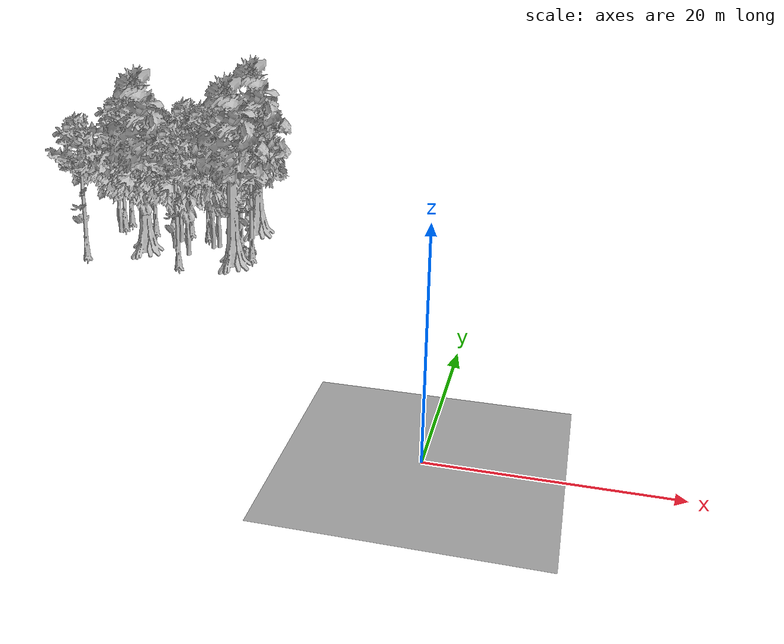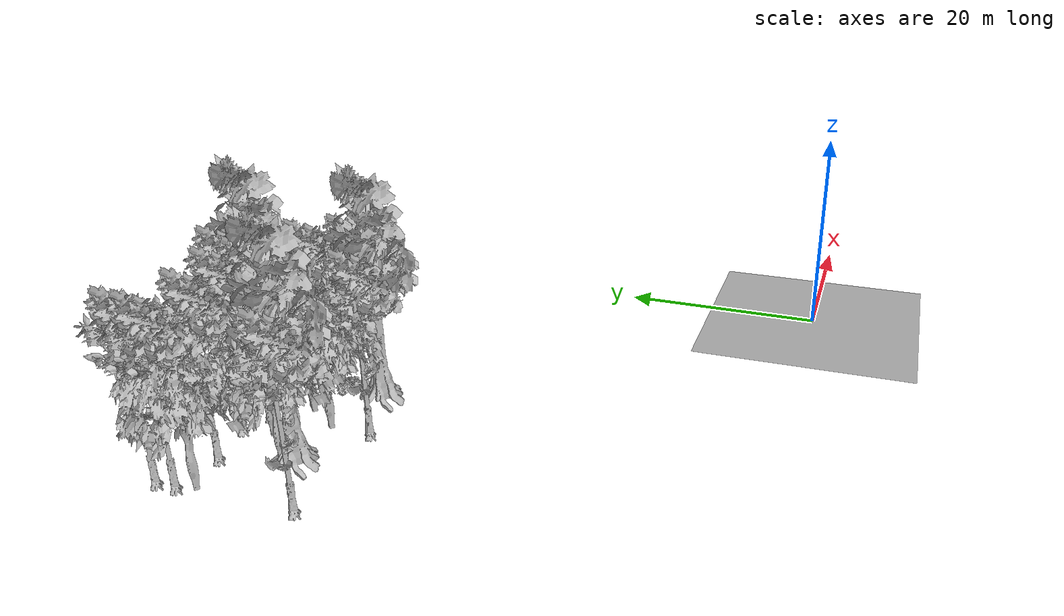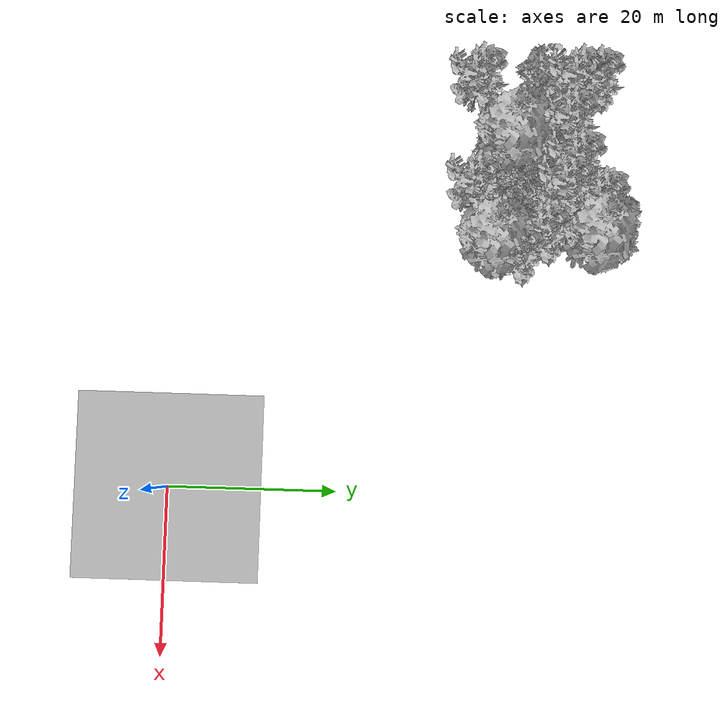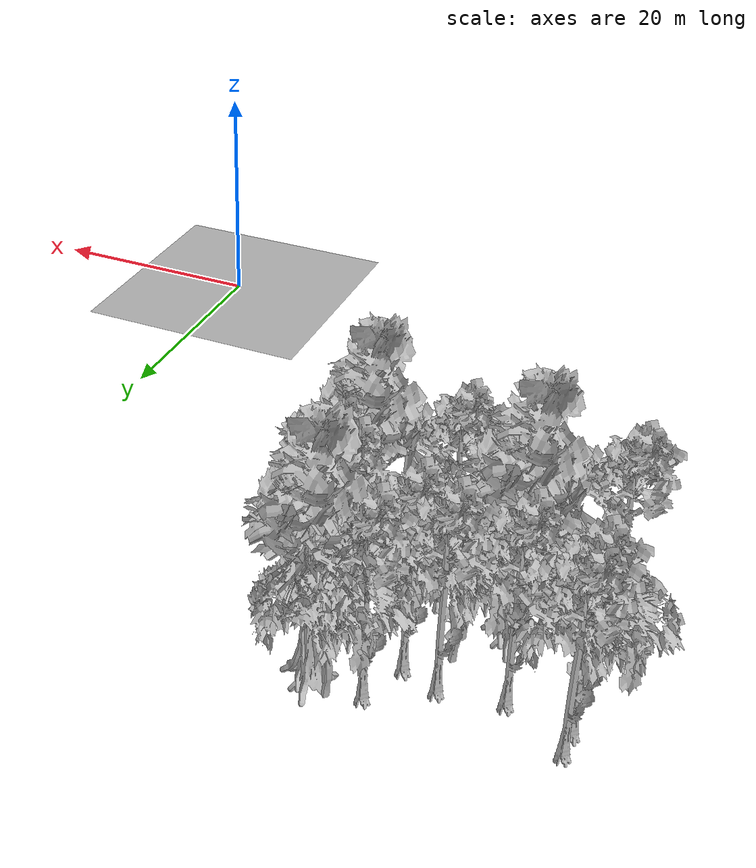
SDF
<sdf version="1.7">
 <world name="default">
  <model name="ground_plane">
   <static>1</static>
   <link name="link">
    <collision name="collision">
     <geometry><plane><normal>0 0 1</normal><size>100 100</size></plane></geometry>
     <surface><contact><ode><min_depth>0.01</min_depth><max_vel>0</max_vel></ode></contact></surface>
    </collision>
    <visual name="grass">
     <cast_shadows>0</cast_shadows>
     <geometry>
      <mesh>
       <scale>0.41000000000000003 0.41000000000000003 0.1</scale>
       <uri>file://grass_plane/meshes/grass_plane.dae</uri>
      </mesh>
     </geometry>
    </visual>
   </link>
  </model>
  <model name="Tree 3">
   <static>1</static>
   <pose>-35.04640376633964 34.69629686138252 0 1.57079 -0 0</pose>
   <link name="link">
    <collision name="collision">
     <geometry><mesh><scale>5 5 5</scale><uri>model://tree_9/meshes/tree_9.obj</uri></mesh></geometry>
    </collision>
    <visual name="visual">
     <geometry><mesh><scale>5 5 5</scale><uri>model://tree_9/meshes/tree_9.obj</uri></mesh></geometry>
    </visual>
   </link>
  </model>
  <model name="Tree 16">
   <static>1</static>
   <pose>-38.04390828666114 42.54708785325384 0 1.57079 -0 0</pose>
   <link name="link">
    <collision name="collision">
     <geometry><mesh><scale>5 5 5</scale><uri>model://tree_2/meshes/tree_2.obj</uri></mesh></geometry>
    </collision>
    <visual name="visual">
     <geometry><mesh><scale>5 5 5</scale><uri>model://tree_2/meshes/tree_2.obj</uri></mesh></geometry>
    </visual>
   </link>
  </model>
  <model name="Tree 41">
   <static>1</static>
   <pose>-32.73987073937401 41.87504957528232 0 1.57079 -0 0</pose>
   <link name="link">
    <collision name="collision">
     <geometry><mesh><scale>5 5 5</scale><uri>model://tree_2/meshes/tree_2.obj</uri></mesh></geometry>
    </collision>
    <visual name="visual">
     <geometry><mesh><scale>5 5 5</scale><uri>model://tree_2/meshes/tree_2.obj</uri></mesh></geometry>
    </visual>
   </link>
  </model>
  <model name="Tree 71">
   <static>1</static>
   <pose>-29.871786347168126 42.182777393270825 0 1.57079 -0 0</pose>
   <link name="link">
    <collision name="collision">
     <geometry><mesh><scale>5 5 5</scale><uri>model://tree_9/meshes/tree_9.obj</uri></mesh></geometry>
    </collision>
    <visual name="visual">
     <geometry><mesh><scale>5 5 5</scale><uri>model://tree_9/meshes/tree_9.obj</uri></mesh></geometry>
    </visual>
   </link>
  </model>
  <model name="Tree 72">
   <static>1</static>
   <pose>-37.95596648200813 40.20338384646338 0 1.57079 -0 0</pose>
   <link name="link">
    <collision name="collision">
     <geometry><mesh><scale>5 5 5</scale><uri>model://tree_2/meshes/tree_2.obj</uri></mesh></geometry>
    </collision>
    <visual name="visual">
     <geometry><mesh><scale>5 5 5</scale><uri>model://tree_2/meshes/tree_2.obj</uri></mesh></geometry>
    </visual>
   </link>
  </model>
  <model name="Tree 73">
   <static>1</static>
   <pose>-31.462649573007116 49.23476173207271 0 1.57079 -0 0</pose>
   <link name="link">
    <collision name="collision">
     <geometry><mesh><scale>5 5 5</scale><uri>model://tree_2/meshes/tree_2.obj</uri></mesh></geometry>
    </collision>
    <visual name="visual">
     <geometry><mesh><scale>5 5 5</scale><uri>model://tree_2/meshes/tree_2.obj</uri></mesh></geometry>
    </visual>
   </link>
  </model>
  <model name="Tree 83">
   <static>1</static>
   <pose>-37.895851060354175 45.79186258499993 0 1.57079 -0 0</pose>
   <link name="link">
    <collision name="collision">
     <geometry><mesh><scale>5 5 5</scale><uri>model://tree_9/meshes/tree_9.obj</uri></mesh></geometry>
    </collision>
    <visual name="visual">
     <geometry><mesh><scale>5 5 5</scale><uri>model://tree_9/meshes/tree_9.obj</uri></mesh></geometry>
    </visual>
   </link>
  </model>
  <model name="Tree 85">
   <static>1</static>
   <pose>-33.620127193260764 48.41159160890511 0 1.57079 -0 0</pose>
   <link name="link">
    <collision name="collision">
     <geometry><mesh><scale>5 5 5</scale><uri>model://tree_9/meshes/tree_9.obj</uri></mesh></geometry>
    </collision>
    <visual name="visual">
     <geometry><mesh><scale>5 5 5</scale><uri>model://tree_9/meshes/tree_9.obj</uri></mesh></geometry>
    </visual>
   </link>
  </model>
  <model name="Tree 100">
   <static>1</static>
   <pose>-33.32349821657577 41.35231738673633 0 1.57079 -0 0</pose>
   <link name="link">
    <collision name="collision">
     <geometry><mesh><scale>5 5 5</scale><uri>model://tree_2/meshes/tree_2.obj</uri></mesh></geometry>
    </collision>
    <visual name="visual">
     <geometry><mesh><scale>5 5 5</scale><uri>model://tree_2/meshes/tree_2.obj</uri></mesh></geometry>
    </visual>
   </link>
  </model>
  <model name="Tree 105">
   <static>1</static>
   <pose>-41.30380353265443 39.59006016532007 0 1.57079 -0 0</pose>
   <link name="link">
    <collision name="collision">
     <geometry><mesh><scale>5 5 5</scale><uri>model://tree_2/meshes/tree_2.obj</uri></mesh></geometry>
    </collision>
    <visual name="visual">
     <geometry><mesh><scale>5 5 5</scale><uri>model://tree_2/meshes/tree_2.obj</uri></mesh></geometry>
    </visual>
   </link>
  </model>
  <model name="Tree 137">
   <static>1</static>
   <pose>-42.46720709388182 44.98236926747016 0 1.57079 -0 0</pose>
   <link name="link">
    <collision name="collision">
     <geometry><mesh><scale>5 5 5</scale><uri>model://tree_9/meshes/tree_9.obj</uri></mesh></geometry>
    </collision>
    <visual name="visual">
     <geometry><mesh><scale>5 5 5</scale><uri>model://tree_9/meshes/tree_9.obj</uri></mesh></geometry>
    </visual>
   </link>
  </model>
  <model name="Tree 164">
   <static>1</static>
   <pose>-40.85618069890715 38.47016322065829 0 1.57079 -0 0</pose>
   <link name="link">
    <collision name="collision">
     <geometry><mesh><scale>5 5 5</scale><uri>model://tree_4/meshes/tree_4.obj</uri></mesh></geometry>
    </collision>
    <visual name="visual">
     <geometry><mesh><scale>5 5 5</scale><uri>model://tree_4/meshes/tree_4.obj</uri></mesh></geometry>
    </visual>
   </link>
  </model>
  <model name="Tree 170">
   <static>1</static>
   <pose>-28.90986218186258 36.7159423877672 0 1.57079 -0 0</pose>
   <link name="link">
    <collision name="collision">
     <geometry><mesh><scale>5 5 5</scale><uri>model://tree_4/meshes/tree_4.obj</uri></mesh></geometry>
    </collision>
    <visual name="visual">
     <geometry><mesh><scale>5 5 5</scale><uri>model://tree_4/meshes/tree_4.obj</uri></mesh></geometry>
    </visual>
   </link>
  </model>
  <model name="Tree 192">
   <static>1</static>
   <pose>-35.399233529174026 38.36211465118173 0 1.57079 -0 0</pose>
   <link name="link">
    <collision name="collision">
     <geometry><mesh><scale>5 5 5</scale><uri>model://tree_2/meshes/tree_2.obj</uri></mesh></geometry>
    </collision>
    <visual name="visual">
     <geometry><mesh><scale>5 5 5</scale><uri>model://tree_2/meshes/tree_2.obj</uri></mesh></geometry>
    </visual>
   </link>
  </model>
  <model name="Tree 203">
   <static>1</static>
   <pose>-47.090308002959546 45.704943119889066 0 1.57079 -0 0</pose>
   <link name="link">
    <collision name="collision">
     <geometry><mesh><scale>5 5 5</scale><uri>model://tree_9/meshes/tree_9.obj</uri></mesh></geometry>
    </collision>
    <visual name="visual">
     <geometry><mesh><scale>5 5 5</scale><uri>model://tree_9/meshes/tree_9.obj</uri></mesh></geometry>
    </visual>
   </link>
  </model>
  <model name="Tree 235">
   <static>1</static>
   <pose>-46.95983678728769 43.80647765038891 0 1.57079 -0 0</pose>
   <link name="link">
    <collision name="collision">
     <geometry><mesh><scale>5 5 5</scale><uri>model://tree_2/meshes/tree_2.obj</uri></mesh></geometry>
    </collision>
    <visual name="visual">
     <geometry><mesh><scale>5 5 5</scale><uri>model://tree_2/meshes/tree_2.obj</uri></mesh></geometry>
    </visual>
   </link>
  </model>
  <model name="Tree 280">
   <static>1</static>
   <pose>-35.14468293414009 44.808912297226456 0 1.57079 -0 0</pose>
   <link name="link">
    <collision name="collision">
     <geometry><mesh><scale>5 5 5</scale><uri>model://tree_9/meshes/tree_9.obj</uri></mesh></geometry>
    </collision>
    <visual name="visual">
     <geometry><mesh><scale>5 5 5</scale><uri>model://tree_9/meshes/tree_9.obj</uri></mesh></geometry>
    </visual>
   </link>
  </model>
  <model name="Tree 322">
   <static>1</static>
   <pose>-29.747695221389094 48.18562880825225 0 1.57079 -0 0</pose>
   <link name="link">
    <collision name="collision">
     <geometry><mesh><scale>5 5 5</scale><uri>model://tree_4/meshes/tree_4.obj</uri></mesh></geometry>
    </collision>
    <visual name="visual">
     <geometry><mesh><scale>5 5 5</scale><uri>model://tree_4/meshes/tree_4.obj</uri></mesh></geometry>
    </visual>
   </link>
  </model>
  <model name="Tree 338">
   <static>1</static>
   <pose>-47.04059631398827 47.63617182437133 0 1.57079 -0 0</pose>
   <link name="link">
    <collision name="collision">
     <geometry><mesh><scale>5 5 5</scale><uri>model://tree_9/meshes/tree_9.obj</uri></mesh></geometry>
    </collision>
    <visual name="visual">
     <geometry><mesh><scale>5 5 5</scale><uri>model://tree_9/meshes/tree_9.obj</uri></mesh></geometry>
    </visual>
   </link>
  </model>
  <model name="Tree 466">
   <static>1</static>
   <pose>-46.975975966512145 34.802555135022544 0 1.57079 -0 0</pose>
   <link name="link">
    <collision name="collision">
     <geometry><mesh><scale>5 5 5</scale><uri>model://tree_9/meshes/tree_9.obj</uri></mesh></geometry>
    </collision>
    <visual name="visual">
     <geometry><mesh><scale>5 5 5</scale><uri>model://tree_9/meshes/tree_9.obj</uri></mesh></geometry>
    </visual>
   </link>
  </model>
  <model name="Tree 497">
   <static>1</static>
   <pose>-27.514258174287704 39.309494726699185 0 1.57079 -0 0</pose>
   <link name="link">
    <collision name="collision">
     <geometry><mesh><scale>5 5 5</scale><uri>model://tree_9/meshes/tree_9.obj</uri></mesh></geometry>
    </collision>
    <visual name="visual">
     <geometry><mesh><scale>5 5 5</scale><uri>model://tree_9/meshes/tree_9.obj</uri></mesh></geometry>
    </visual>
   </link>
  </model>
  <model name="Bush 118">
   <static>1</static>
   <pose>-28.736567379924566 40.22516269369763 0 1.57079 -0 0</pose>
   <link name="link">
    <collision name="collision">
     <geometry><mesh><scale>2 2 2</scale><uri>model://bush_2/meshes/bush_2.obj</uri></mesh></geometry>
    </collision>
    <visual name="visual">
     <geometry><mesh><scale>5 5 5</scale><uri>model://bush_2/meshes/bush_2.obj</uri></mesh></geometry>
    </visual>
   </link>
  </model>
 </world>
</sdf>
